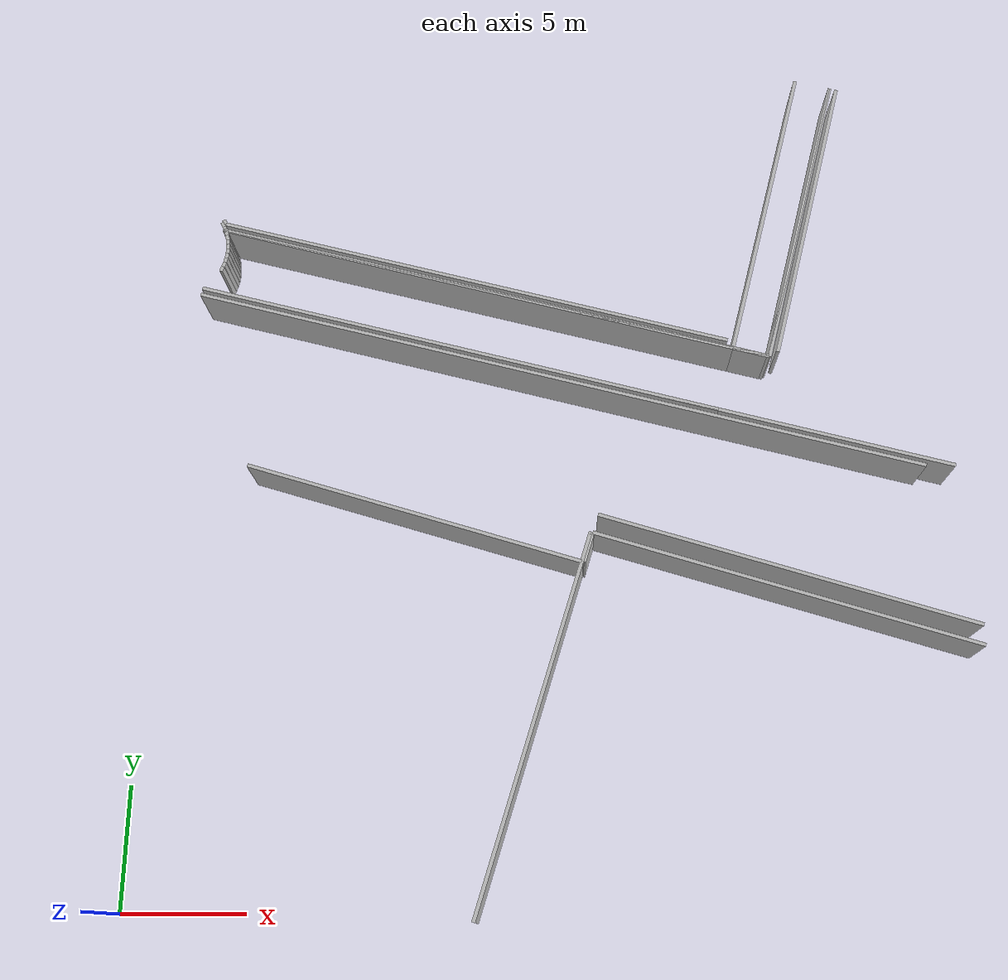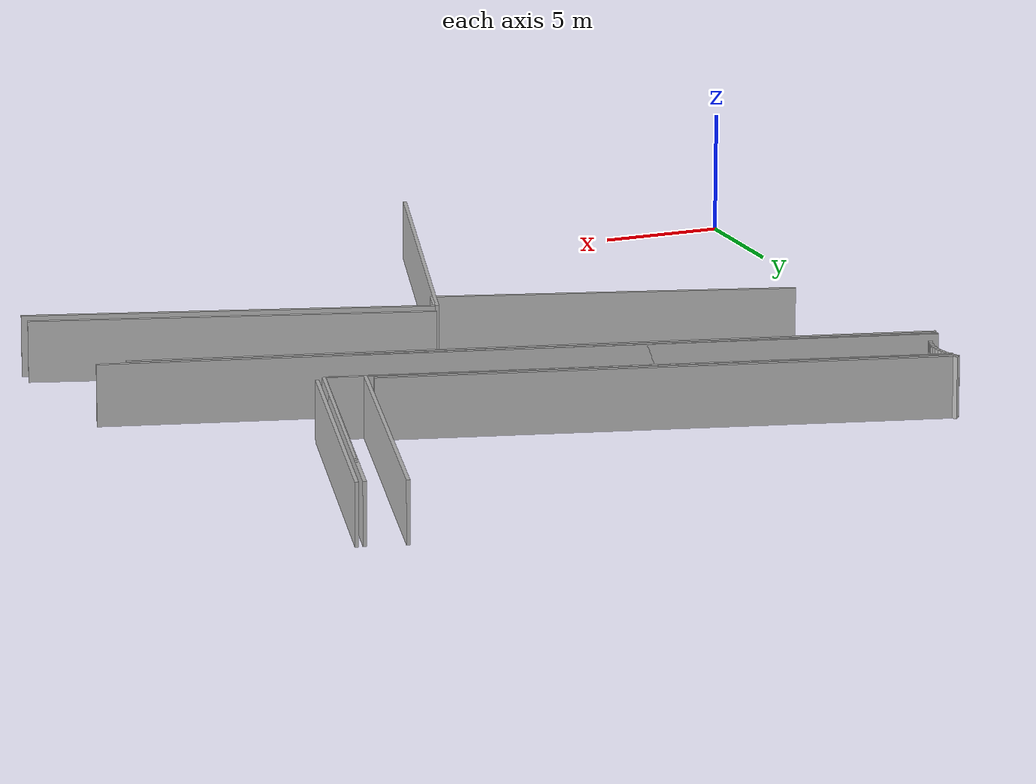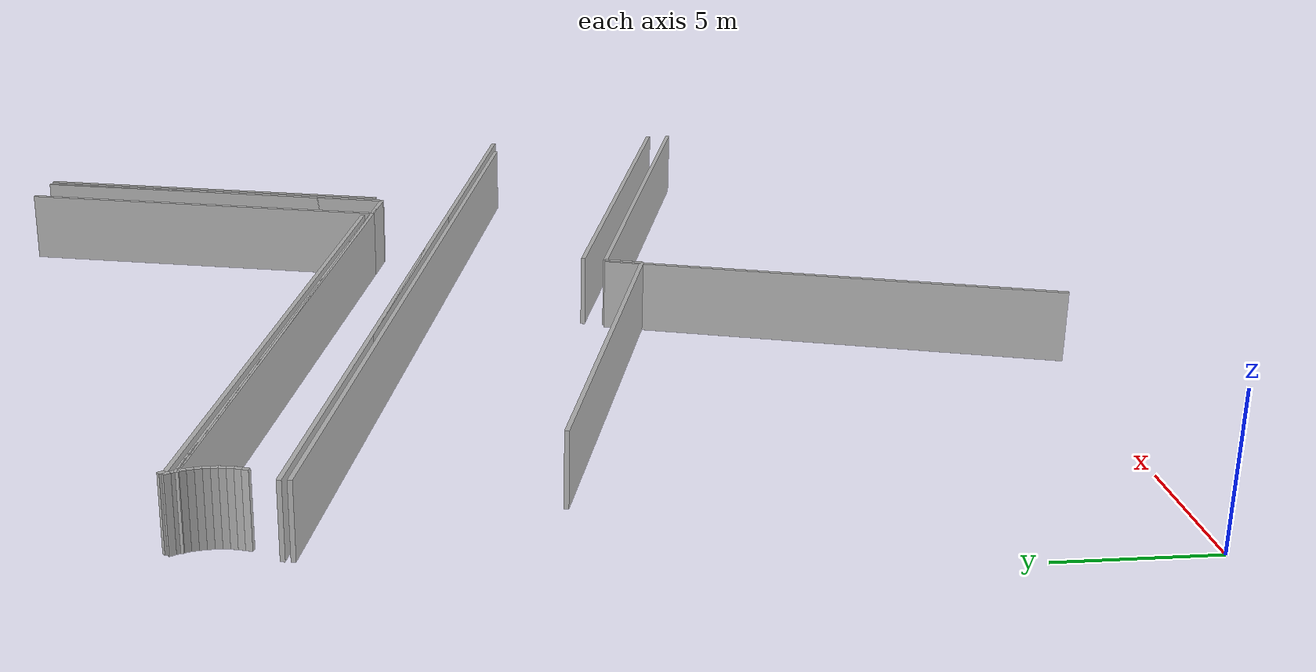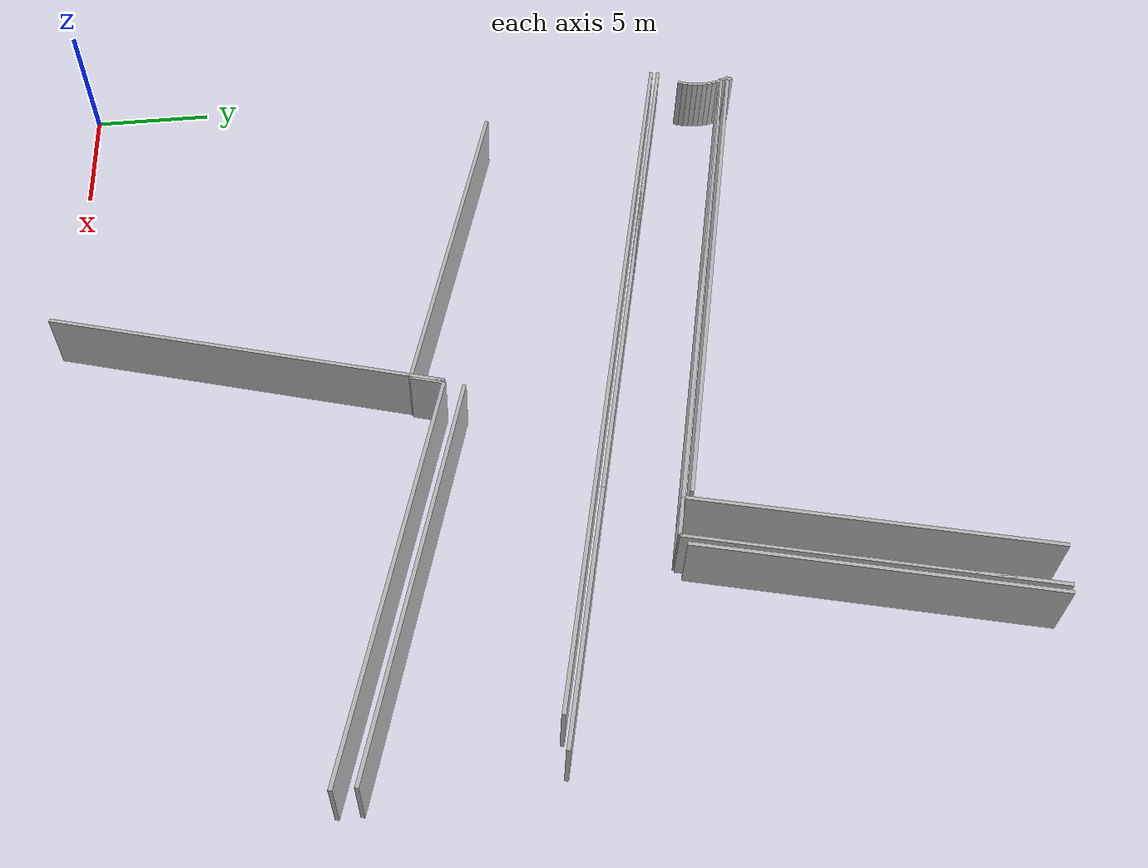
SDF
<sdf version="1.6">
 <model name="sps_0108">
  <static>1</static>
  <allow_auto_disable>0</allow_auto_disable>
  <link name="Wall15">
   <collision name="collision"><geometry><box><size>22.9368 0.15 2.5</size></box></geometry></collision>
   <visual name="visual">
    <geometry><box><size>22.9368 0.15 2.5</size></box></geometry>
    <transparency>0.0</transparency>
   </visual>
   <pose>13.6903 25.9987 1.25 0 -0 2.8938</pose>
  </link>
  <link name="Wall16">
   <collision name="collision"><geometry><box><size>13.5896 0.15 2.5</size></box></geometry></collision>
   <visual name="visual">
    <geometry><box><size>13.5896 0.15 2.5</size></box></geometry>
    <transparency>0.0</transparency>
   </visual>
   <pose>28.0263 29.3809 1.25 0 0 -1.81851</pose>
  </link>
  <link name="Wall448">
   <collision name="collision"><geometry><box><size>33.0564 0.15 2.5</size></box></geometry></collision>
   <visual name="visual">
    <geometry><box><size>33.0564 0.15 2.5</size></box></geometry>
    <transparency>0.0</transparency>
   </visual>
   <pose>17.8847 21.9464 1.25 0 -0 2.89383</pose>
  </link>
  <link name="Wall737">
   <collision name="collision"><geometry><box><size>1.30961 0.15 2.5</size></box></geometry></collision>
   <visual name="visual">
    <geometry><box><size>1.30961 0.15 2.5</size></box></geometry>
    <transparency>0.0</transparency>
   </visual>
   <pose>18.5507 14.3491 1.25 0 -0 1.28695</pose>
  </link>
  <link name="Wall741">
   <collision name="collision"><geometry><box><size>1.60048 0.15 2.5</size></box></geometry></collision>
   <visual name="visual">
    <geometry><box><size>1.60048 0.15 2.5</size></box></geometry>
    <transparency>0.0</transparency>
   </visual>
   <pose>25.5845 22.9898 1.25 0 -0 2.89374</pose>
  </link>
  <link name="Wall787">
   <collision name="collision"><geometry><box><size>31.8407 0.15 2.5</size></box></geometry></collision>
   <visual name="visual">
    <geometry><box><size>31.8407 0.15 2.5</size></box></geometry>
    <transparency>0.0</transparency>
   </visual>
   <pose>17.2501 21.7974 1.25 0 0 -0.247766</pose>
  </link>
  <link name="Wall1126">
   <collision name="collision"><geometry><box><size>22.6074 0.15 2.5</size></box></geometry></collision>
   <visual name="visual">
    <geometry><box><size>22.6074 0.15 2.5</size></box></geometry>
    <transparency>0.0</transparency>
   </visual>
   <pose>13.633 26.3228 1.25 0 -0 2.89379</pose>
  </link>
  <link name="Wall1152">
   <collision name="collision"><geometry><box><size>16.1848 0.15 2.5</size></box></geometry></collision>
   <visual name="visual">
    <geometry><box><size>16.1848 0.15 2.5</size></box></geometry>
    <transparency>0.0</transparency>
   </visual>
   <pose>26.7132 13.4373 1.25 0 0 -0.289268</pose>
  </link>
  <link name="Wall1454">
   <collision name="collision"><geometry><box><size>14.6296 0.15 2.5</size></box></geometry></collision>
   <visual name="visual">
    <geometry><box><size>14.6296 0.15 2.5</size></box></geometry>
    <transparency>0.0</transparency>
   </visual>
   <pose>11.3563 15.8068 1.25 0 0 -0.289232</pose>
  </link>
  <link name="Wall1458">
   <collision name="collision"><geometry><box><size>13.5904 0.15 2.5</size></box></geometry></collision>
   <visual name="visual">
    <geometry><box><size>13.5904 0.15 2.5</size></box></geometry>
    <transparency>0.0</transparency>
   </visual>
   <pose>26.4752 29.7735 1.25 0 -0 1.32298</pose>
  </link>
  <link name="Wall2087">
   <collision name="collision"><geometry><box><size>13.2896 0.15 2.5</size></box></geometry></collision>
   <visual name="visual">
    <geometry><box><size>13.2896 0.15 2.5</size></box></geometry>
    <transparency>0.0</transparency>
   </visual>
   <pose>28.3538 29.4529 1.25 0 -0 1.32296</pose>
  </link>
  <link name="Wall2521">
   <collision name="collision"><geometry><box><size>16.4184 0.15 2.5</size></box></geometry></collision>
   <visual name="visual">
    <geometry><box><size>16.4184 0.15 2.5</size></box></geometry>
    <transparency>0.0</transparency>
   </visual>
   <pose>26.6017 12.6346 1.25 0 0 -0.289445</pose>
  </link>
  <link name="Wall3682">
   <collision name="collision"><geometry><box><size>0.222461 0.15 2.5</size></box></geometry></collision>
   <visual name="visual">
    <geometry><box><size>0.222461 0.15 2.5</size></box></geometry>
    <transparency>0.0</transparency>
   </visual>
   <pose>2.54674 29.0694 1.25 0 0 -1.09144</pose>
  </link>
  <link name="Wall3683">
   <collision name="collision"><geometry><box><size>0.222582 0.15 2.5</size></box></geometry></collision>
   <visual name="visual">
    <geometry><box><size>0.222582 0.15 2.5</size></box></geometry>
    <transparency>0.0</transparency>
   </visual>
   <pose>2.64065 28.8679 1.25 0 0 -1.17797</pose>
  </link>
  <link name="Wall3684">
   <collision name="collision"><geometry><box><size>0.222494 0.15 2.5</size></box></geometry></collision>
   <visual name="visual">
    <geometry><box><size>0.222494 0.15 2.5</size></box></geometry>
    <transparency>0.0</transparency>
   </visual>
   <pose>2.71667 28.659 1.25 0 0 -1.2657</pose>
  </link>
  <link name="Wall3685">
   <collision name="collision"><geometry><box><size>0.222438 0.15 2.5</size></box></geometry></collision>
   <visual name="visual">
    <geometry><box><size>0.222438 0.15 2.5</size></box></geometry>
    <transparency>0.0</transparency>
   </visual>
   <pose>2.77416 28.4443 1.25 0 0 -1.35257</pose>
  </link>
  <link name="Wall3686">
   <collision name="collision"><geometry><box><size>0.222515 0.15 2.5</size></box></geometry></collision>
   <visual name="visual">
    <geometry><box><size>0.222515 0.15 2.5</size></box></geometry>
    <transparency>0.0</transparency>
   </visual>
   <pose>2.81264 28.2254 1.25 0 0 -1.44096</pose>
  </link>
  <link name="Wall3687">
   <collision name="collision"><geometry><box><size>0.222375 0.15 2.5</size></box></geometry></collision>
   <visual name="visual">
    <geometry><box><size>0.222375 0.15 2.5</size></box></geometry>
    <transparency>0.0</transparency>
   </visual>
   <pose>2.83184 28.004 1.25 0 0 -1.52769</pose>
  </link>
  <link name="Wall3688">
   <collision name="collision"><geometry><box><size>0.222436 0.15 2.5</size></box></geometry></collision>
   <visual name="visual">
    <geometry><box><size>0.222436 0.15 2.5</size></box></geometry>
    <transparency>0.0</transparency>
   </visual>
   <pose>2.83184 27.7818 1.25 0 0 -1.61389</pose>
  </link>
  <link name="Wall3689">
   <collision name="collision"><geometry><box><size>0.222502 0.15 2.5</size></box></geometry></collision>
   <visual name="visual">
    <geometry><box><size>0.222502 0.15 2.5</size></box></geometry>
    <transparency>0.0</transparency>
   </visual>
   <pose>2.81246 27.5604 1.25 0 0 -1.7023</pose>
  </link>
  <link name="Wall3690">
   <collision name="collision"><geometry><box><size>0.222511 0.15 2.5</size></box></geometry></collision>
   <visual name="visual">
    <geometry><box><size>0.222511 0.15 2.5</size></box></geometry>
    <transparency>0.0</transparency>
   </visual>
   <pose>2.77376 27.3415 1.25 0 0 -1.78923</pose>
  </link>
  <link name="Wall3691">
   <collision name="collision"><geometry><box><size>0.222317 0.15 2.5</size></box></geometry></collision>
   <visual name="visual">
    <geometry><box><size>0.222317 0.15 2.5</size></box></geometry>
    <transparency>0.0</transparency>
   </visual>
   <pose>2.71615 27.1269 1.25 0 0 -1.87701</pose>
  </link>
  <link name="Wall3692">
   <collision name="collision"><geometry><box><size>0.222525 0.15 2.5</size></box></geometry></collision>
   <visual name="visual">
    <geometry><box><size>0.222525 0.15 2.5</size></box></geometry>
    <transparency>0.0</transparency>
   </visual>
   <pose>2.64004 26.9181 1.25 0 0 -1.96373</pose>
  </link>
  <link name="Wall4587">
   <collision name="collision"><geometry><box><size>22.9272 0.15 2.5</size></box></geometry></collision>
   <visual name="visual">
    <geometry><box><size>22.9272 0.15 2.5</size></box></geometry>
    <transparency>0.0</transparency>
   </visual>
   <pose>12.9752 23.1883 1.25 0 -0 2.89382</pose>
  </link>
  <link name="Wall4634">
   <collision name="collision"><geometry><box><size>22.937 0.15 2.5</size></box></geometry></collision>
   <visual name="visual">
    <geometry><box><size>22.937 0.15 2.5</size></box></geometry>
    <transparency>0.0</transparency>
   </visual>
   <pose>13.6905 25.9988 1.25 0 0 -0.247781</pose>
  </link>
  <link name="Wall4637">
   <collision name="collision"><geometry><box><size>13.5901 0.15 2.5</size></box></geometry></collision>
   <visual name="visual">
    <geometry><box><size>13.5901 0.15 2.5</size></box></geometry>
    <transparency>0.0</transparency>
   </visual>
   <pose>28.0264 29.3811 1.25 0 0 -1.81852</pose>
  </link>
  <link name="Wall5369">
   <collision name="collision"><geometry><box><size>16.0008 0.15 2.5</size></box></geometry></collision>
   <visual name="visual">
    <geometry><box><size>16.0008 0.15 2.5</size></box></geometry>
    <transparency>0.0</transparency>
   </visual>
   <pose>16.369 7.3343 1.25 0 -0 1.28204</pose>
  </link>
  <link name="Wall5712">
   <collision name="collision"><geometry><box><size>22.937 0.15 2.5</size></box></geometry></collision>
   <visual name="visual">
    <geometry><box><size>22.937 0.15 2.5</size></box></geometry>
    <transparency>0.0</transparency>
   </visual>
   <pose>13.6905 25.9987 1.25 0 0 -0.247791</pose>
  </link>
  <link name="Wall5713">
   <collision name="collision"><geometry><box><size>1.60042 0.15 2.5</size></box></geometry></collision>
   <visual name="visual">
    <geometry><box><size>1.60042 0.15 2.5</size></box></geometry>
    <transparency>0.0</transparency>
   </visual>
   <pose>25.5845 22.9897 1.25 0 0 -0.247707</pose>
  </link>
  <link name="Wall6434">
   <collision name="collision"><geometry><box><size>0.228882 0.15 2.5</size></box></geometry></collision>
   <visual name="visual">
    <geometry><box><size>0.228882 0.15 2.5</size></box></geometry>
    <transparency>0.0</transparency>
   </visual>
   <pose>2.61846 29.195 1.25 0 0 -1.05764</pose>
  </link>
 </model>
</sdf>
